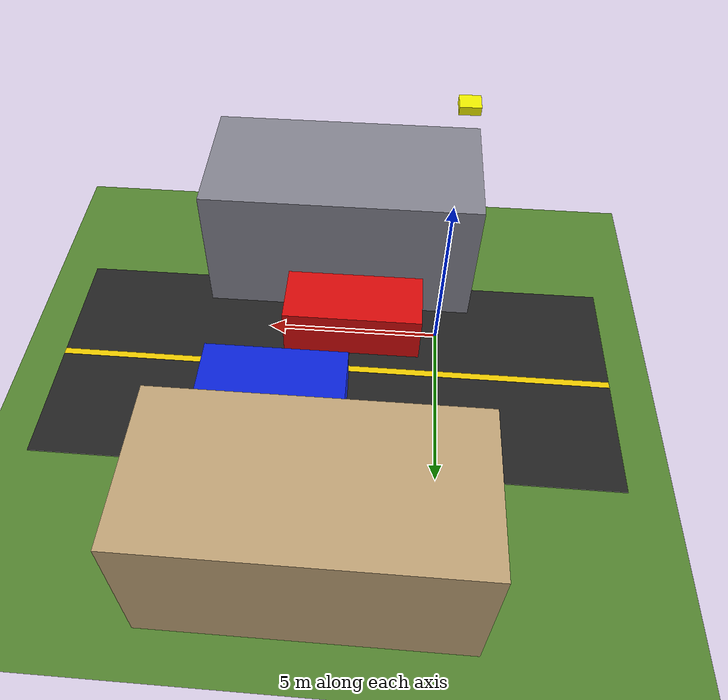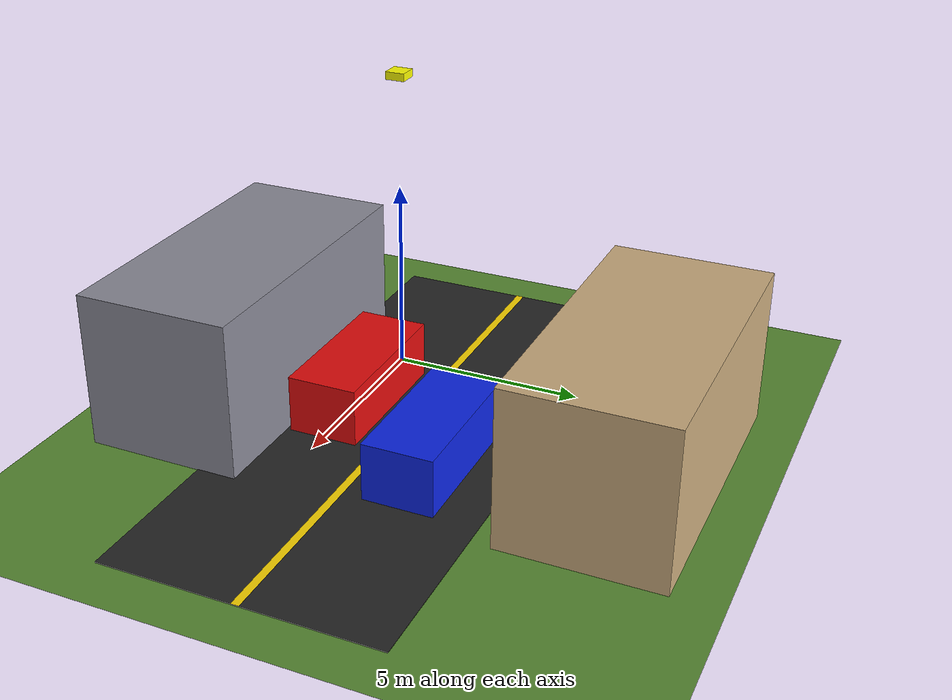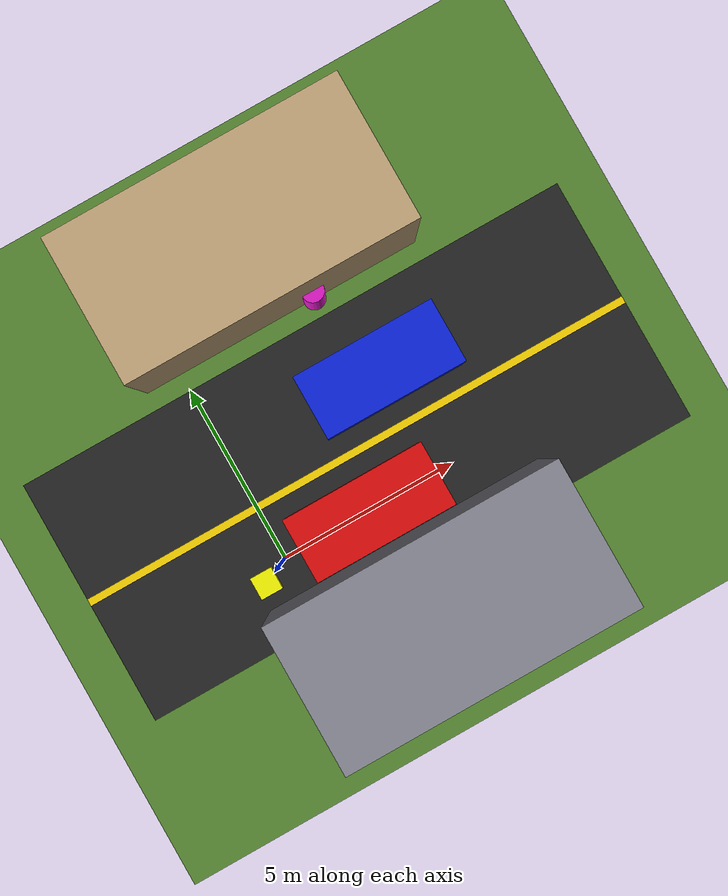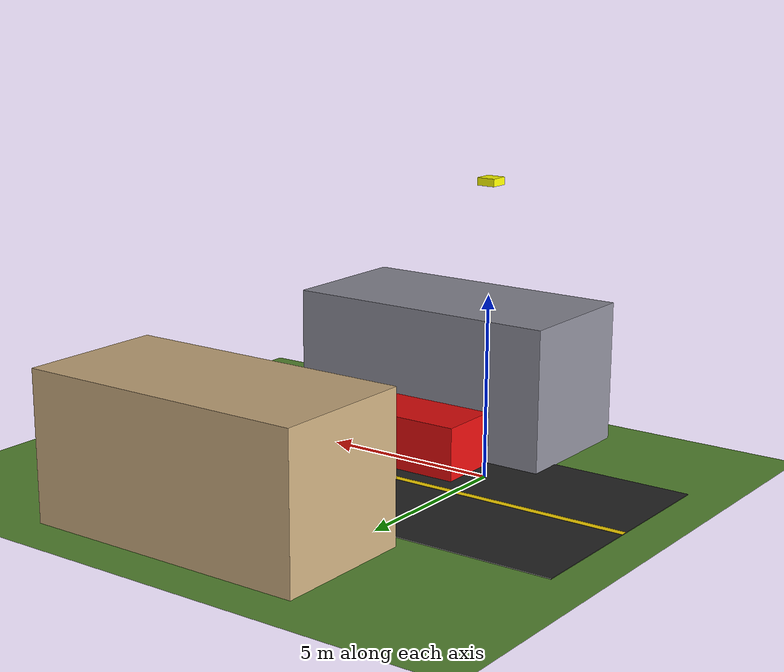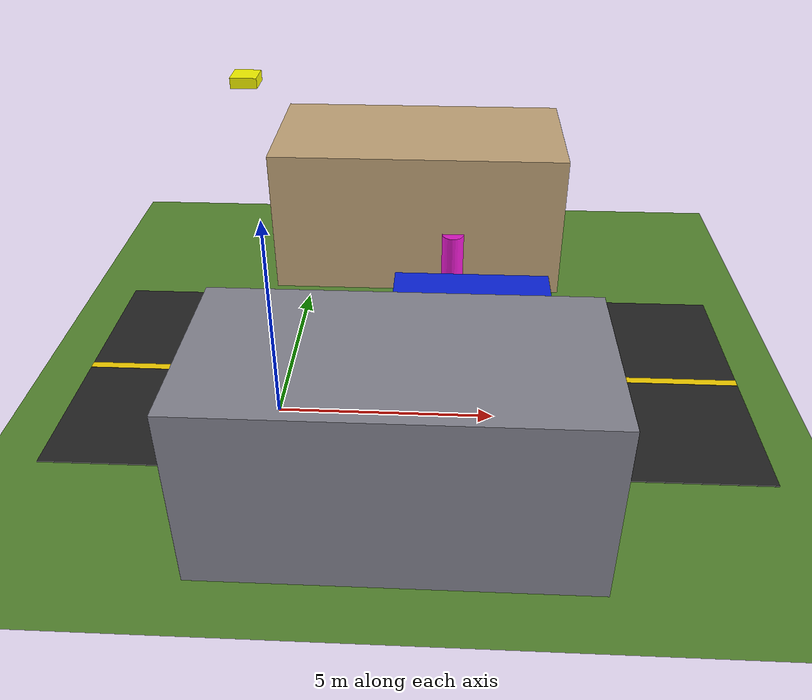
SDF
<?xml version="1.0" ?>
<sdf version="1.6">
  <world name="default">

    <gravity>0 0 0</gravity>

    <plugin filename="ignition-gazebo-physics-system"
            name="ignition::gazebo::systems::Physics"/>
    <plugin filename="ignition-gazebo-user-commands-system"
            name="ignition::gazebo::systems::UserCommands"/>
    <plugin filename="ignition-gazebo-scene-broadcaster-system"
            name="ignition::gazebo::systems::SceneBroadcaster"/>
    <plugin filename="ignition-gazebo-sensors-system"
            name="ignition::gazebo::systems::Sensors">
      <render_engine>ogre</render_engine>
    </plugin>

    <light type="directional" name="sun">
      <cast_shadows>false</cast_shadows>
      <pose>0 0 20 0 0 0</pose>
      <diffuse>1.0 1.0 1.0 1</diffuse>
      <specular>0.4 0.4 0.4 1</specular>
      <direction>0 0 -1</direction>
    </light>

    <!-- Green grass ground -->
    <model name="ground_plane">
      <static>true</static>
      <link name="link">
        <collision name="collision">
          <geometry>
            <plane><normal>0 0 1</normal><size>100 100</size></plane>
          </geometry>
        </collision>
        <visual name="visual">
          <geometry>
            <plane><normal>0 0 1</normal><size>100 100</size></plane>
          </geometry>
          <material>
            <ambient>0.35 0.55 0.2 1</ambient>
            <diffuse>0.35 0.55 0.2 1</diffuse>
          </material>
        </visual>
      </link>
    </model>

    <!-- Dark road running along UAV path -->
    <model name="road">
      <static>true</static>
      <pose>3.0 1.5 0.01 0 0 0</pose>
      <link name="link">
        <visual name="visual">
          <geometry>
            <box><size>16 7.0 0.02</size></box>
          </geometry>
          <material>
            <ambient>0.15 0.15 0.15 1</ambient>
            <diffuse>0.15 0.15 0.15 1</diffuse>
          </material>
        </visual>
      </link>
    </model>

    <!-- Yellow center line -->
    <model name="road_center_line">
      <static>true</static>
      <pose>3.0 1.5 0.02 0 0 0</pose>
      <link name="link">
        <visual name="visual">
          <geometry>
            <box><size>16 0.2 0.01</size></box>
          </geometry>
          <material>
            <ambient>1.0 0.85 0.0 1</ambient>
            <diffuse>1.0 0.85 0.0 1</diffuse>
          </material>
        </visual>
      </link>
    </model>

    <!-- Gray building north of road -->
    <model name="building_north">
      <static>true</static>
      <pose>3.0 -3.0 2.0 0 0 0</pose>
      <link name="link">
        <visual name="visual">
          <geometry>
            <box><size>8.0 4.0 4.0</size></box>
          </geometry>
          <material>
            <ambient>0.55 0.55 0.6 1</ambient>
            <diffuse>0.55 0.55 0.6 1</diffuse>
          </material>
        </visual>
      </link>
    </model>

    <!-- Beige building south of road -->
    <model name="building_south">
      <static>true</static>
      <pose>3.0 7.5 2.0 0 0 0</pose>
      <link name="link">
        <visual name="visual">
          <geometry>
            <box><size>8.0 4.0 4.0</size></box>
          </geometry>
          <material>
            <ambient>0.8 0.68 0.5 1</ambient>
            <diffuse>0.8 0.68 0.5 1</diffuse>
          </material>
        </visual>
      </link>
    </model>

    <!-- RED truck on road - south lane -->
    <model name="truck_red">
      <static>true</static>
      <pose>2.5 0.0 0.75 0 0 0</pose>
      <link name="link">
        <visual name="visual">
          <geometry>
            <box><size>4.0 1.8 1.5</size></box>
          </geometry>
          <material>
            <ambient>0.9 0.05 0.05 1</ambient>
            <diffuse>0.9 0.05 0.05 1</diffuse>
          </material>
        </visual>
      </link>
    </model>

    <!-- BLUE truck on road - north lane -->
    <model name="truck_blue">
      <static>true</static>
      <pose>4.5 3.0 0.75 0 0 0</pose>
      <link name="link">
        <visual name="visual">
          <geometry>
            <box><size>4.0 1.8 1.5</size></box>
          </geometry>
          <material>
            <ambient>0.05 0.15 0.9 1</ambient>
            <diffuse>0.05 0.15 0.9 1</diffuse>
          </material>
        </visual>
      </link>
    </model>

    <!-- Person 1: bright white, north sidewalk -->
    <model name="person_1">
      <static>true</static>
      <pose>2.0 -1.5 0.9 0 0 0</pose>
      <link name="link">
        <visual name="visual">
          <geometry>
            <cylinder><radius>0.3</radius><length>1.8</length></cylinder>
          </geometry>
          <material>
            <ambient>0.95 0.95 0.95 1</ambient>
            <diffuse>0.95 0.95 0.95 1</diffuse>
          </material>
        </visual>
      </link>
    </model>

    <!-- Person 2: bright magenta, south sidewalk -->
    <model name="person_2">
      <static>true</static>
      <pose>4.0 5.5 0.9 0 0 0</pose>
      <link name="link">
        <visual name="visual">
          <geometry>
            <cylinder><radius>0.3</radius><length>1.8</length></cylinder>
          </geometry>
          <material>
            <ambient>0.9 0.1 0.8 1</ambient>
            <diffuse>0.9 0.1 0.8 1</diffuse>
          </material>
        </visual>
      </link>
    </model>

    <model name="uav">
      <pose>0 0 8 0 0 0</pose>
      <plugin filename="ignition-gazebo-velocity-control-system"
              name="ignition::gazebo::systems::VelocityControl">
        <topic>/cmd_vel</topic>
      </plugin>
      <plugin filename="ignition-gazebo-odometry-publisher-system"
              name="ignition::gazebo::systems::OdometryPublisher">
      </plugin>

      <link name="base_link">
        <gravity>false</gravity>
        <inertial>
          <mass>1.0</mass>
        </inertial>
        <collision name="collision">
          <geometry>
            <box><size>0.5 0.5 0.2</size></box>
          </geometry>
        </collision>
        <visual name="visual">
          <geometry>
            <box><size>0.5 0.5 0.2</size></box>
          </geometry>
          <material>
            <ambient>1 1 0 1</ambient>
            <diffuse>1 1 0 1</diffuse>
          </material>
        </visual>

        <sensor name="camera" type="camera">
          <pose>0 0 -0.1 0 1.5708 0</pose>
          <camera>
            <horizontal_fov>1.047</horizontal_fov>
            <image>
              <width>640</width>
              <height>480</height>
            </image>
            <clip>
              <near>0.5</near>
              <far>100</far>
            </clip>
          </camera>
          <always_on>1</always_on>
          <update_rate>5</update_rate>
          <topic>/uav/camera</topic>
        </sensor>
      </link>
    </model>

  </world>
</sdf>
